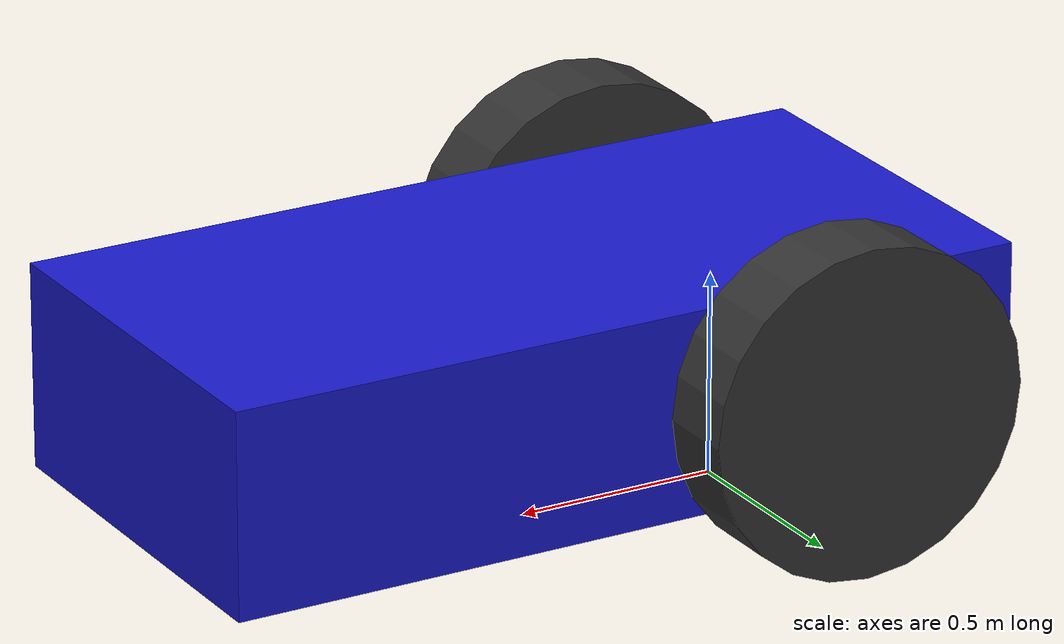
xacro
<?xml version="1.0"?>
<robot xmlns:xacro="http://www.ros.org/wiki/xacro"  name="robot">
    <!-- Include Colours & Inertia Macros -->
    <xacro:include filename="include.xacro"/>

    <!-- Links -->
    <link name="base_link"></link>

    <link name='chassis'>
        <visual>
            <geometry>
                <box size="2.0 1.0 0.5"/>
            </geometry>
            <origin xyz="0.5 0 0" rpy="0 0 0"/>
            <material name="blue"/>
        </visual>
        <collision name='collision'>
            <geometry>
                <box size="2.0 1.0 0.5"/>
            </geometry>
            <origin xyz="0.5 0 0.4" rpy="0 0 0"/>
        </collision>
        <xacro:inertial_box mass="5.0" x="2.0" y="1.0" z="0.5">
            <origin xyz="0.5 0 0" rpy="0 0 0"/>
        </xacro:inertial_box>
    </link>

    <link name='left_wheel'>
        <visual>
            <geometry>
                <cylinder length="0.2" radius="0.4"/>
            </geometry>
            <origin xyz="0 0 0" rpy="0 0 0"/>
            <material name="black"/>
        </visual>
        <collision name='collision'>
            <geometry>
                <cylinder length="0.2" radius="0.4"/>
            </geometry>
            <origin xyz="0 0 0" rpy="0 0 0"/>
        </collision>
        <xacro:inertial_cylinder mass="2.0" length="0.2" radius="0.4">
            <origin xyz="0 0 0" rpy="0 0 0"/>
        </xacro:inertial_cylinder>
    </link>

    <link name='right_wheel'>
        <visual>
            <geometry>
                <cylinder length="0.2" radius="0.4"/>
            </geometry>
            <origin xyz="0 0 0" rpy="0 0 0"/>
            <material name="black"/>
        </visual>
        <collision name='collision'>
            <geometry>
                <cylinder length="0.2" radius="0.4"/>
            </geometry>
            <origin xyz="0 0 0" rpy="0 0 0"/>
        </collision>
        <xacro:inertial_cylinder mass="2.0" length="0.2" radius="0.4">
            <origin xyz="0 0 0" rpy="0 0 0"/>
        </xacro:inertial_cylinder>
    </link>

    <link name='caster_wheel'>
        <visual>
            <geometry>
                <sphere radius="0.15"/>
            </geometry>
            <origin xyz="0 0 0" rpy="0 0 0"/>
            <material name="black"/>
        </visual>
        <collision name='collision'>
            <geometry>
                <sphere radius="0.15"/>
            </geometry>
            <origin xyz="0 0 0" rpy="0 0 0"/>
        </collision>
        <xacro:inertial_sphere mass="0.5" radius="0.15">
            <origin xyz="0 0 0" rpy="0 0 0"/>
        </xacro:inertial_sphere>
    </link>

    <!-- Joints -->
    <joint name="chassis_joint" type="fixed">
        <origin xyz ="0 0 0.4" rpy="0 0 0"/>
        <parent link="base_link"/>
        <child link="chassis"/>
    </joint>

    <joint name="left_wheel_joint" type="continuous">
        <origin xyz ="0 0.6 0" rpy="-1.57 0 0"/>
        <parent link="chassis"/>
        <child link="left_wheel"/>
        <axis xyz="0 0 1"/>
    </joint>

    <joint name="right_wheel_joint" type="continuous">
        <origin xyz ="0 -0.6 0" rpy="1.57 0 0"/>
        <parent link="chassis"/>
        <child link="right_wheel"/>
        <axis xyz="0 0 1"/>
    </joint>

    <joint name="caster_joint" type="fixed">
        <origin xyz ="1.2 0 -0.25 " rpy="0 0 0"/>
        <parent link="chassis"/>
        <child link="caster_wheel"/>
    </joint>

    <gazebo reference="left_wheel">
        <mu1>0.9</mu1>
        <mu2>0.9</mu2>
    </gazebo>

    <gazebo reference="right_wheel">
        <mu1>0.9</mu1>
        <mu2>0.9</mu2>
    </gazebo>

    <gazebo reference="caster_wheel">
        <mu1>0.05</mu1>
        <mu2>0.05</mu2>
    </gazebo>

    <!-- Plugins to control wheel joints using topics -->
    <gazebo>
        <plugin
            filename="libignition-gazebo-joint-controller-system.so"
            name="ignition::gazebo::systems::JointController">
            <joint_name>left_wheel_joint</joint_name>
            <topic>left_wheel/cmd_vel</topic>
        </plugin>
    </gazebo>

    <gazebo>
        <plugin
            filename="libignition-gazebo-joint-controller-system.so"
            name="ignition::gazebo::systems::JointController">
            <joint_name>right_wheel_joint</joint_name>
            <topic>right_wheel/cmd_vel</topic>
        </plugin>
    </gazebo>
</robot>

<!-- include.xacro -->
<robot xmlns:xacro="http://www.ros.org/wiki/xacro" >
    <!-- Colours -->
    <material name="black">
        <color rgba="0.2 0.2 0.2 1"/>
    </material>
    <material name="blue">
        <color rgba="0.1 0.1 0.8 1"/>
    </material>

    <!-- Inertia Macros -->
    <xacro:macro name="inertial_sphere" params="mass radius *origin">
        <inertial>
            <xacro:insert_block name="origin"/>
            <mass value="${mass}" />
            <inertia ixx="${(2/5) * mass * (radius*radius)}" ixy="0.0" ixz="0.0"
                    iyy="${(2/5) * mass * (radius*radius)}" iyz="0.0"
                    izz="${(2/5) * mass * (radius*radius)}" />
        </inertial>
    </xacro:macro>

    <xacro:macro name="inertial_box" params="mass x y z *origin">
        <inertial>
            <xacro:insert_block name="origin"/>
            <mass value="${mass}" />
            <inertia ixx="${(1/12) * mass * (y*y+z*z)}" ixy="0.0" ixz="0.0"
                    iyy="${(1/12) * mass * (x*x+z*z)}" iyz="0.0"
                    izz="${(1/12) * mass * (x*x+y*y)}" />
        </inertial>
    </xacro:macro>

    <xacro:macro name="inertial_cylinder" params="mass length radius *origin">
        <inertial>
            <xacro:insert_block name="origin"/>
            <mass value="${mass}" />
            <inertia ixx="${(1/12) * mass * (3*radius*radius + length*length)}" ixy="0.0" ixz="0.0"
                    iyy="${(1/12) * mass * (3*radius*radius + length*length)}" iyz="0.0"
                    izz="${(1/2) * mass * (radius*radius)}" />
        </inertial>
    </xacro:macro>
</robot>
